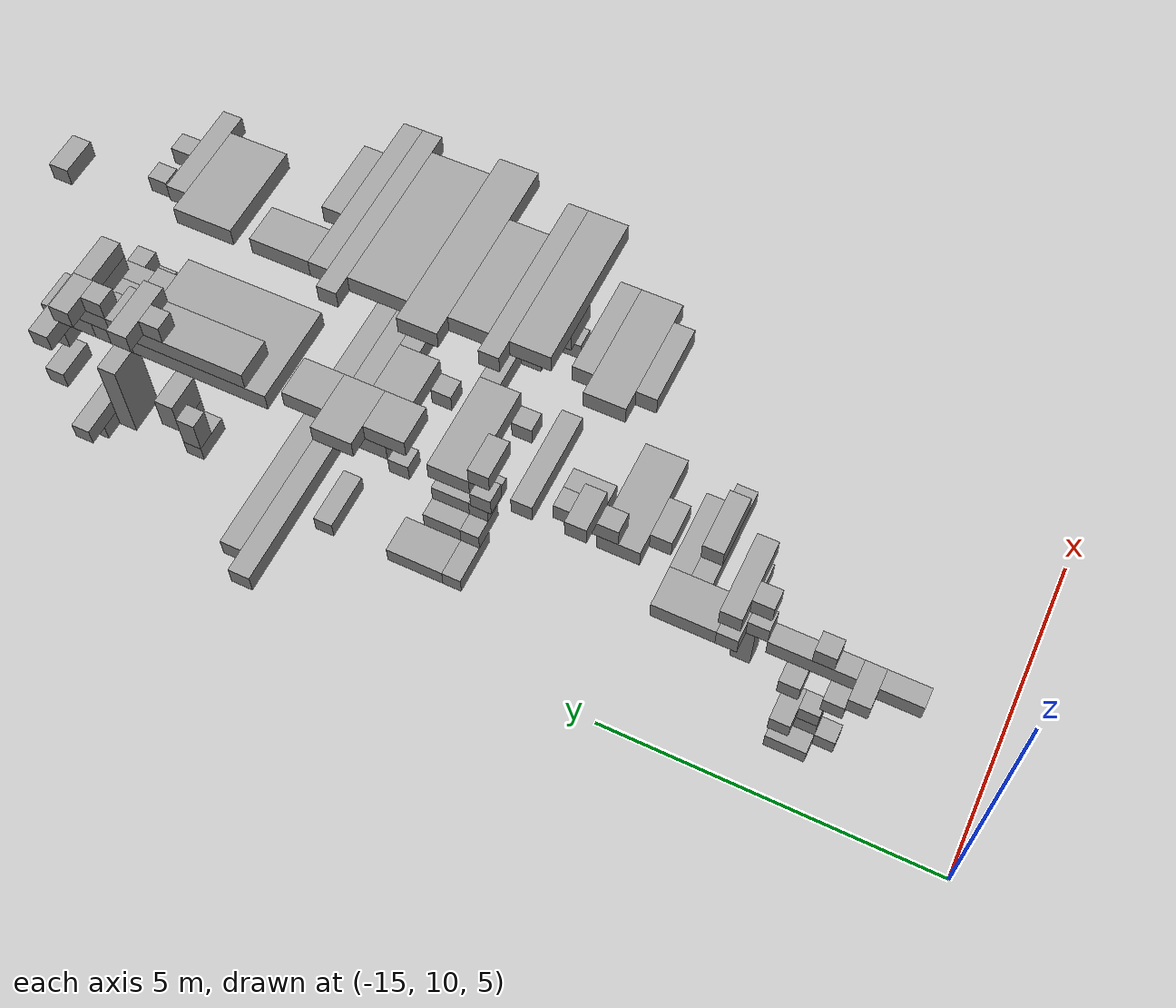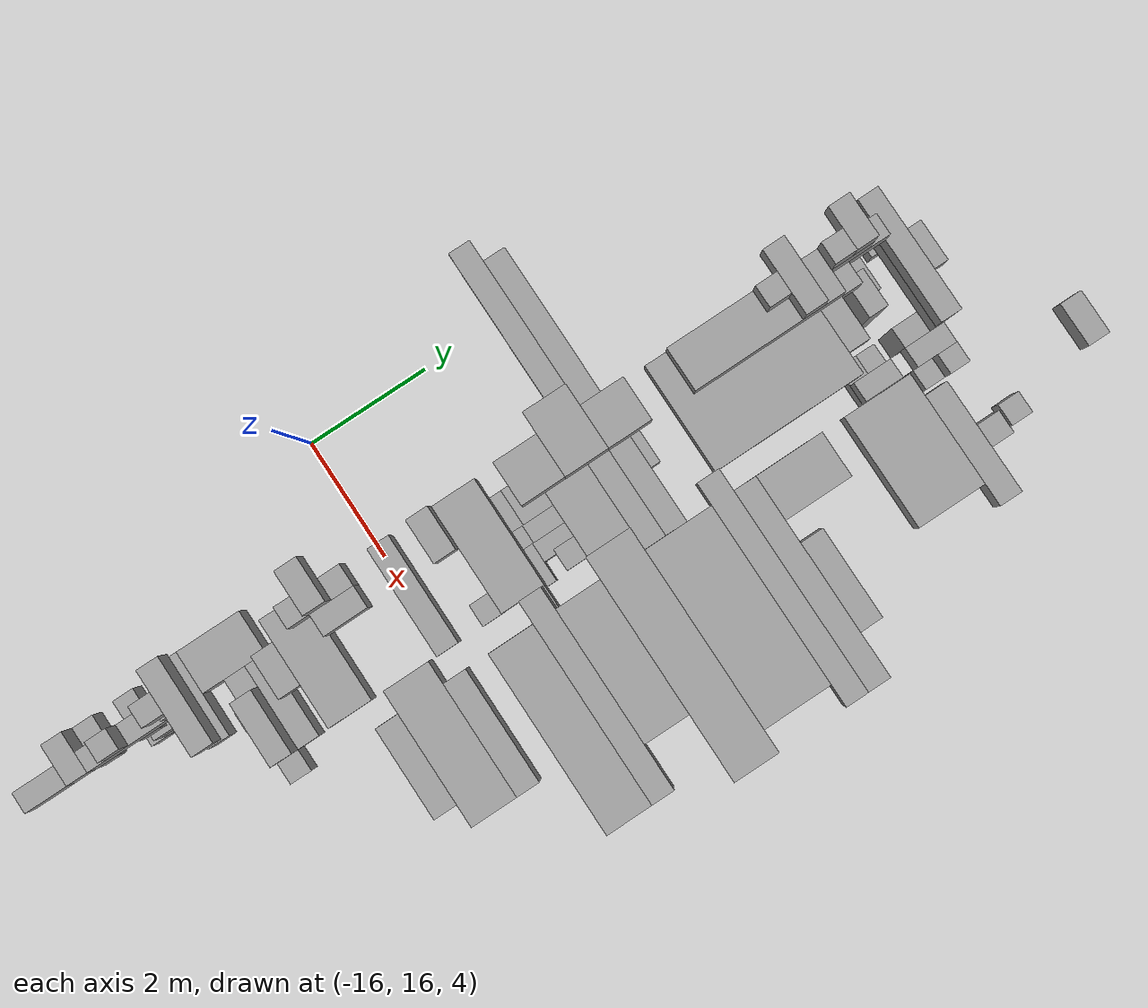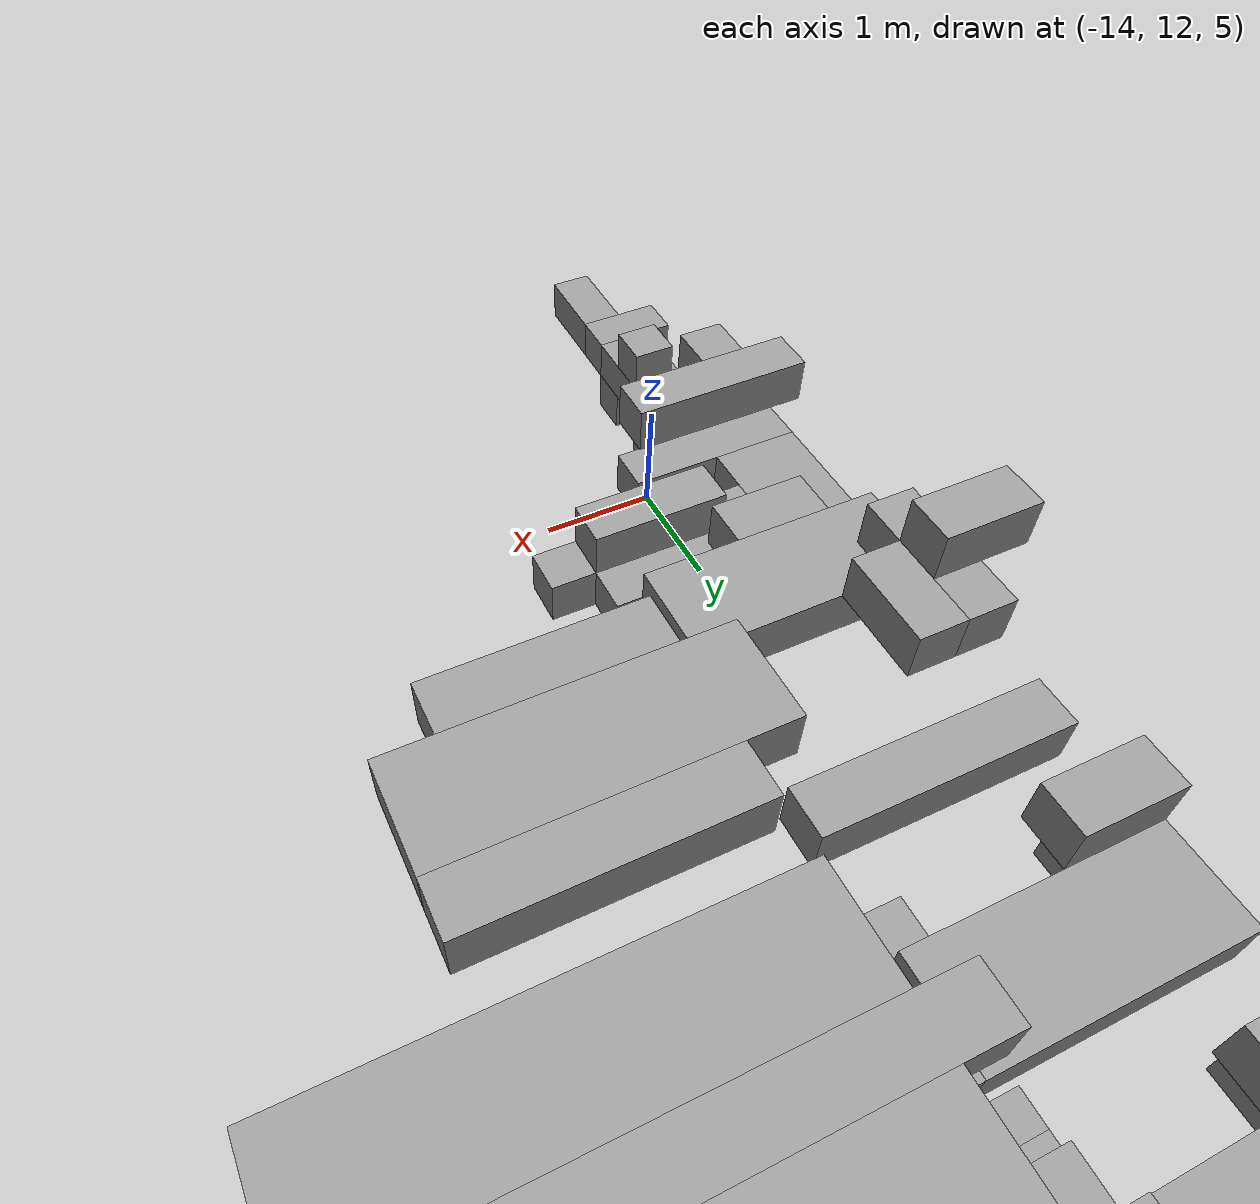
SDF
<sdf version="1.6">
 <world name="bt_world">
  <include><uri>model://sun</uri></include>
  <model name="obstacle_1231">
   <static>true</static>
   <pose>-12.9 19.349999999999998 7.6499999999999995 0 0 0</pose>
   <link name="link">
    <collision name="collision"><geometry><box><size>6.6 0.3 0.3</size></box></geometry></collision>
    <visual name="visual">
     <geometry><box><size>6.6 0.3 0.3</size></box></geometry>
     <material><ambient>0.5 0.5 0.5 1</ambient><diffuse>0.6 0.6 0.6 1</diffuse></material>
    </visual>
   </link>
  </model>
  <model name="obstacle_1248">
   <static>true</static>
   <pose>-12.75 19.65 7.6499999999999995 0 0 0</pose>
   <link name="link">
    <collision name="collision"><geometry><box><size>6.3 0.3 0.3</size></box></geometry></collision>
    <visual name="visual">
     <geometry><box><size>6.3 0.3 0.3</size></box></geometry>
     <material><ambient>0.5 0.5 0.5 1</ambient><diffuse>0.6 0.6 0.6 1</diffuse></material>
    </visual>
   </link>
  </model>
  <model name="obstacle_1386">
   <static>true</static>
   <pose>-13.799999999999999 11.85 6.75 0 0 0</pose>
   <link name="link">
    <collision name="collision"><geometry><box><size>0.6 0.3 0.3</size></box></geometry></collision>
    <visual name="visual">
     <geometry><box><size>0.6 0.3 0.3</size></box></geometry>
     <material><ambient>0.5 0.5 0.5 1</ambient><diffuse>0.6 0.6 0.6 1</diffuse></material>
    </visual>
   </link>
  </model>
  <model name="obstacle_1387">
   <static>true</static>
   <pose>-13.799999999999999 12.15 6.45 0 0 0</pose>
   <link name="link">
    <collision name="collision"><geometry><box><size>0.6 0.3 0.3</size></box></geometry></collision>
    <visual name="visual">
     <geometry><box><size>0.6 0.3 0.3</size></box></geometry>
     <material><ambient>0.5 0.5 0.5 1</ambient><diffuse>0.6 0.6 0.6 1</diffuse></material>
    </visual>
   </link>
  </model>
  <model name="obstacle_1388">
   <static>true</static>
   <pose>-13.799999999999999 12.6 4.6499999999999995 0 0 0</pose>
   <link name="link">
    <collision name="collision"><geometry><box><size>0.6 0.6 0.3</size></box></geometry></collision>
    <visual name="visual">
     <geometry><box><size>0.6 0.6 0.3</size></box></geometry>
     <material><ambient>0.5 0.5 0.5 1</ambient><diffuse>0.6 0.6 0.6 1</diffuse></material>
    </visual>
   </link>
  </model>
  <model name="obstacle_1389">
   <static>true</static>
   <pose>-13.799999999999999 12.75 5.25 0 0 0</pose>
   <link name="link">
    <collision name="collision"><geometry><box><size>0.6 0.3 0.3</size></box></geometry></collision>
    <visual name="visual">
     <geometry><box><size>0.6 0.3 0.3</size></box></geometry>
     <material><ambient>0.5 0.5 0.5 1</ambient><diffuse>0.6 0.6 0.6 1</diffuse></material>
    </visual>
   </link>
  </model>
  <model name="obstacle_1391">
   <static>true</static>
   <pose>-13.799999999999999 12.75 6.45 0 0 0</pose>
   <link name="link">
    <collision name="collision"><geometry><box><size>0.6 0.3 0.3</size></box></geometry></collision>
    <visual name="visual">
     <geometry><box><size>0.6 0.3 0.3</size></box></geometry>
     <material><ambient>0.5 0.5 0.5 1</ambient><diffuse>0.6 0.6 0.6 1</diffuse></material>
    </visual>
   </link>
  </model>
  <model name="obstacle_1392">
   <static>true</static>
   <pose>-13.5 13.65 7.05 0 0 0</pose>
   <link name="link">
    <collision name="collision"><geometry><box><size>1.2 0.3 0.3</size></box></geometry></collision>
    <visual name="visual">
     <geometry><box><size>1.2 0.3 0.3</size></box></geometry>
     <material><ambient>0.5 0.5 0.5 1</ambient><diffuse>0.6 0.6 0.6 1</diffuse></material>
    </visual>
   </link>
  </model>
  <model name="obstacle_1393">
   <static>true</static>
   <pose>-13.5 13.65 7.6499999999999995 0 0 0</pose>
   <link name="link">
    <collision name="collision"><geometry><box><size>1.2 0.3 0.3</size></box></geometry></collision>
    <visual name="visual">
     <geometry><box><size>1.2 0.3 0.3</size></box></geometry>
     <material><ambient>0.5 0.5 0.5 1</ambient><diffuse>0.6 0.6 0.6 1</diffuse></material>
    </visual>
   </link>
  </model>
  <model name="obstacle_1394">
   <static>true</static>
   <pose>-13.799999999999999 14.25 7.05 0 0 0</pose>
   <link name="link">
    <collision name="collision">
     <geometry><box><size>0.6 0.8999999999999999 0.3</size></box></geometry>
    </collision>
    <visual name="visual">
     <geometry><box><size>0.6 0.8999999999999999 0.3</size></box></geometry>
     <material><ambient>0.5 0.5 0.5 1</ambient><diffuse>0.6 0.6 0.6 1</diffuse></material>
    </visual>
   </link>
  </model>
  <model name="obstacle_1395">
   <static>true</static>
   <pose>-13.799999999999999 15.75 8.25 0 0 0</pose>
   <link name="link">
    <collision name="collision"><geometry><box><size>0.6 0.3 0.3</size></box></geometry></collision>
    <visual name="visual">
     <geometry><box><size>0.6 0.3 0.3</size></box></geometry>
     <material><ambient>0.5 0.5 0.5 1</ambient><diffuse>0.6 0.6 0.6 1</diffuse></material>
    </visual>
   </link>
  </model>
  <model name="obstacle_1396">
   <static>true</static>
   <pose>-13.65 19.2 7.949999999999999 0 0 0</pose>
   <link name="link">
    <collision name="collision">
     <geometry><box><size>0.8999999999999999 0.6 0.3</size></box></geometry>
    </collision>
    <visual name="visual">
     <geometry><box><size>0.8999999999999999 0.6 0.3</size></box></geometry>
     <material><ambient>0.5 0.5 0.5 1</ambient><diffuse>0.6 0.6 0.6 1</diffuse></material>
    </visual>
   </link>
  </model>
  <model name="obstacle_1397">
   <static>true</static>
   <pose>-13.65 22.349999999999998 8.25 0 0 0</pose>
   <link name="link">
    <collision name="collision">
     <geometry><box><size>0.8999999999999999 0.3 0.3</size></box></geometry>
    </collision>
    <visual name="visual">
     <geometry><box><size>0.8999999999999999 0.3 0.3</size></box></geometry>
     <material><ambient>0.5 0.5 0.5 1</ambient><diffuse>0.6 0.6 0.6 1</diffuse></material>
    </visual>
   </link>
  </model>
  <model name="obstacle_1398">
   <static>true</static>
   <pose>-13.799999999999999 23.25 8.25 0 0 0</pose>
   <link name="link">
    <collision name="collision"><geometry><box><size>0.6 0.3 0.3</size></box></geometry></collision>
    <visual name="visual">
     <geometry><box><size>0.6 0.3 0.3</size></box></geometry>
     <material><ambient>0.5 0.5 0.5 1</ambient><diffuse>0.6 0.6 0.6 1</diffuse></material>
    </visual>
   </link>
  </model>
  <model name="obstacle_1399">
   <static>true</static>
   <pose>-13.65 23.849999999999998 4.95 0 0 0</pose>
   <link name="link">
    <collision name="collision">
     <geometry><box><size>0.8999999999999999 0.3 0.3</size></box></geometry>
    </collision>
    <visual name="visual">
     <geometry><box><size>0.8999999999999999 0.3 0.3</size></box></geometry>
     <material><ambient>0.5 0.5 0.5 1</ambient><diffuse>0.6 0.6 0.6 1</diffuse></material>
    </visual>
   </link>
  </model>
  <model name="obstacle_1400">
   <static>true</static>
   <pose>-13.799999999999999 23.849999999999998 6.45 0 0 0</pose>
   <link name="link">
    <collision name="collision"><geometry><box><size>0.6 0.3 0.3</size></box></geometry></collision>
    <visual name="visual">
     <geometry><box><size>0.6 0.3 0.3</size></box></geometry>
     <material><ambient>0.5 0.5 0.5 1</ambient><diffuse>0.6 0.6 0.6 1</diffuse></material>
    </visual>
   </link>
  </model>
  <model name="obstacle_1401">
   <static>true</static>
   <pose>-13.2 23.849999999999998 7.35 0 0 0</pose>
   <link name="link">
    <collision name="collision">
     <geometry><box><size>1.7999999999999998 0.3 0.3</size></box></geometry>
    </collision>
    <visual name="visual">
     <geometry><box><size>1.7999999999999998 0.3 0.3</size></box></geometry>
     <material><ambient>0.5 0.5 0.5 1</ambient><diffuse>0.6 0.6 0.6 1</diffuse></material>
    </visual>
   </link>
  </model>
  <model name="obstacle_1473">
   <static>true</static>
   <pose>-13.65 11.4 6.75 0 0 0</pose>
   <link name="link">
    <collision name="collision"><geometry><box><size>0.3 0.6 0.3</size></box></geometry></collision>
    <visual name="visual">
     <geometry><box><size>0.3 0.6 0.3</size></box></geometry>
     <material><ambient>0.5 0.5 0.5 1</ambient><diffuse>0.6 0.6 0.6 1</diffuse></material>
    </visual>
   </link>
  </model>
  <model name="obstacle_1474">
   <static>true</static>
   <pose>-13.65 12.15 4.6499999999999995 0 0 0</pose>
   <link name="link">
    <collision name="collision"><geometry><box><size>0.3 0.3 0.3</size></box></geometry></collision>
    <visual name="visual">
     <geometry><box><size>0.3 0.3 0.3</size></box></geometry>
     <material><ambient>0.5 0.5 0.5 1</ambient><diffuse>0.6 0.6 0.6 1</diffuse></material>
    </visual>
   </link>
  </model>
  <model name="obstacle_1475">
   <static>true</static>
   <pose>-13.65 12.6 6.75 0 0 0</pose>
   <link name="link">
    <collision name="collision"><geometry><box><size>0.3 1.2 0.3</size></box></geometry></collision>
    <visual name="visual">
     <geometry><box><size>0.3 1.2 0.3</size></box></geometry>
     <material><ambient>0.5 0.5 0.5 1</ambient><diffuse>0.6 0.6 0.6 1</diffuse></material>
    </visual>
   </link>
  </model>
  <model name="obstacle_1476">
   <static>true</static>
   <pose>-13.65 12.6 4.95 0 0 0</pose>
   <link name="link">
    <collision name="collision"><geometry><box><size>0.3 0.6 0.3</size></box></geometry></collision>
    <visual name="visual">
     <geometry><box><size>0.3 0.6 0.3</size></box></geometry>
     <material><ambient>0.5 0.5 0.5 1</ambient><diffuse>0.6 0.6 0.6 1</diffuse></material>
    </visual>
   </link>
  </model>
  <model name="obstacle_1477">
   <static>true</static>
   <pose>-13.65 12.45 5.25 0 0 0</pose>
   <link name="link">
    <collision name="collision"><geometry><box><size>0.3 0.3 0.3</size></box></geometry></collision>
    <visual name="visual">
     <geometry><box><size>0.3 0.3 0.3</size></box></geometry>
     <material><ambient>0.5 0.5 0.5 1</ambient><diffuse>0.6 0.6 0.6 1</diffuse></material>
    </visual>
   </link>
  </model>
  <model name="obstacle_1478">
   <static>true</static>
   <pose>-13.65 12.45 7.05 0 0 0</pose>
   <link name="link">
    <collision name="collision"><geometry><box><size>0.3 0.3 0.3</size></box></geometry></collision>
    <visual name="visual">
     <geometry><box><size>0.3 0.3 0.3</size></box></geometry>
     <material><ambient>0.5 0.5 0.5 1</ambient><diffuse>0.6 0.6 0.6 1</diffuse></material>
    </visual>
   </link>
  </model>
  <model name="obstacle_1479">
   <static>true</static>
   <pose>-13.65 13.35 7.05 0 0 0</pose>
   <link name="link">
    <collision name="collision"><geometry><box><size>0.3 0.3 0.3</size></box></geometry></collision>
    <visual name="visual">
     <geometry><box><size>0.3 0.3 0.3</size></box></geometry>
     <material><ambient>0.5 0.5 0.5 1</ambient><diffuse>0.6 0.6 0.6 1</diffuse></material>
    </visual>
   </link>
  </model>
  <model name="obstacle_1480">
   <static>true</static>
   <pose>-13.65 13.35 7.6499999999999995 0 0 0</pose>
   <link name="link">
    <collision name="collision"><geometry><box><size>0.3 0.3 0.3</size></box></geometry></collision>
    <visual name="visual">
     <geometry><box><size>0.3 0.3 0.3</size></box></geometry>
     <material><ambient>0.5 0.5 0.5 1</ambient><diffuse>0.6 0.6 0.6 1</diffuse></material>
    </visual>
   </link>
  </model>
  <model name="obstacle_1481">
   <static>true</static>
   <pose>-13.049999999999999 15.299999999999999 7.6499999999999995 0 0 0</pose>
   <link name="link">
    <collision name="collision"><geometry><box><size>1.5 0.6 0.3</size></box></geometry></collision>
    <visual name="visual">
     <geometry><box><size>1.5 0.6 0.3</size></box></geometry>
     <material><ambient>0.5 0.5 0.5 1</ambient><diffuse>0.6 0.6 0.6 1</diffuse></material>
    </visual>
   </link>
  </model>
  <model name="obstacle_1482">
   <static>true</static>
   <pose>-13.65 15.75 7.949999999999999 0 0 0</pose>
   <link name="link">
    <collision name="collision">
     <geometry><box><size>0.3 0.8999999999999999 0.3</size></box></geometry>
    </collision>
    <visual name="visual">
     <geometry><box><size>0.3 0.8999999999999999 0.3</size></box></geometry>
     <material><ambient>0.5 0.5 0.5 1</ambient><diffuse>0.6 0.6 0.6 1</diffuse></material>
    </visual>
   </link>
  </model>
  <model name="obstacle_1483">
   <static>true</static>
   <pose>-13.049999999999999 16.65 7.6499999999999995 0 0 0</pose>
   <link name="link">
    <collision name="collision"><geometry><box><size>1.5 0.3 0.3</size></box></geometry></collision>
    <visual name="visual">
     <geometry><box><size>1.5 0.3 0.3</size></box></geometry>
     <material><ambient>0.5 0.5 0.5 1</ambient><diffuse>0.6 0.6 0.6 1</diffuse></material>
    </visual>
   </link>
  </model>
  <model name="obstacle_1484">
   <static>true</static>
   <pose>-13.65 17.25 7.35 0 0 0</pose>
   <link name="link">
    <collision name="collision"><geometry><box><size>0.3 0.3 0.3</size></box></geometry></collision>
    <visual name="visual">
     <geometry><box><size>0.3 0.3 0.3</size></box></geometry>
     <material><ambient>0.5 0.5 0.5 1</ambient><diffuse>0.6 0.6 0.6 1</diffuse></material>
    </visual>
   </link>
  </model>
  <model name="obstacle_1485">
   <static>true</static>
   <pose>-13.5 17.25 7.949999999999999 0 0 0</pose>
   <link name="link">
    <collision name="collision"><geometry><box><size>0.6 0.3 0.3</size></box></geometry></collision>
    <visual name="visual">
     <geometry><box><size>0.6 0.3 0.3</size></box></geometry>
     <material><ambient>0.5 0.5 0.5 1</ambient><diffuse>0.6 0.6 0.6 1</diffuse></material>
    </visual>
   </link>
  </model>
  <model name="obstacle_1486">
   <static>true</static>
   <pose>-13.049999999999999 17.7 7.6499999999999995 0 0 0</pose>
   <link name="link">
    <collision name="collision"><geometry><box><size>1.5 0.6 0.3</size></box></geometry></collision>
    <visual name="visual">
     <geometry><box><size>1.5 0.6 0.3</size></box></geometry>
     <material><ambient>0.5 0.5 0.5 1</ambient><diffuse>0.6 0.6 0.6 1</diffuse></material>
    </visual>
   </link>
  </model>
  <model name="obstacle_1487">
   <static>true</static>
   <pose>-13.35 17.849999999999998 4.6499999999999995 0 0 0</pose>
   <link name="link">
    <collision name="collision">
     <geometry><box><size>0.8999999999999999 0.3 0.3</size></box></geometry>
    </collision>
    <visual name="visual">
     <geometry><box><size>0.8999999999999999 0.3 0.3</size></box></geometry>
     <material><ambient>0.5 0.5 0.5 1</ambient><diffuse>0.6 0.6 0.6 1</diffuse></material>
    </visual>
   </link>
  </model>
  <model name="obstacle_1488">
   <static>true</static>
   <pose>-13.5 18.45 4.6499999999999995 0 0 0</pose>
   <link name="link">
    <collision name="collision">
     <geometry><box><size>0.6 0.8999999999999999 0.3</size></box></geometry>
    </collision>
    <visual name="visual">
     <geometry><box><size>0.6 0.8999999999999999 0.3</size></box></geometry>
     <material><ambient>0.5 0.5 0.5 1</ambient><diffuse>0.6 0.6 0.6 1</diffuse></material>
    </visual>
   </link>
  </model>
  <model name="obstacle_1489">
   <static>true</static>
   <pose>-13.65 18.45 7.35 0 0 0</pose>
   <link name="link">
    <collision name="collision"><geometry><box><size>0.3 0.3 0.3</size></box></geometry></collision>
    <visual name="visual">
     <geometry><box><size>0.3 0.3 0.3</size></box></geometry>
     <material><ambient>0.5 0.5 0.5 1</ambient><diffuse>0.6 0.6 0.6 1</diffuse></material>
    </visual>
   </link>
  </model>
  <model name="obstacle_1490">
   <static>true</static>
   <pose>-13.5 18.599999999999998 7.949999999999999 0 0 0</pose>
   <link name="link">
    <collision name="collision"><geometry><box><size>0.6 0.6 0.3</size></box></geometry></collision>
    <visual name="visual">
     <geometry><box><size>0.6 0.6 0.3</size></box></geometry>
     <material><ambient>0.5 0.5 0.5 1</ambient><diffuse>0.6 0.6 0.6 1</diffuse></material>
    </visual>
   </link>
  </model>
  <model name="obstacle_1491">
   <static>true</static>
   <pose>-13.049999999999999 18.9 7.6499999999999995 0 0 0</pose>
   <link name="link">
    <collision name="collision"><geometry><box><size>1.5 0.6 0.3</size></box></geometry></collision>
    <visual name="visual">
     <geometry><box><size>1.5 0.6 0.3</size></box></geometry>
     <material><ambient>0.5 0.5 0.5 1</ambient><diffuse>0.6 0.6 0.6 1</diffuse></material>
    </visual>
   </link>
  </model>
  <model name="obstacle_1492">
   <static>true</static>
   <pose>-13.65 19.65 7.35 0 0 0</pose>
   <link name="link">
    <collision name="collision"><geometry><box><size>0.3 0.3 0.3</size></box></geometry></collision>
    <visual name="visual">
     <geometry><box><size>0.3 0.3 0.3</size></box></geometry>
     <material><ambient>0.5 0.5 0.5 1</ambient><diffuse>0.6 0.6 0.6 1</diffuse></material>
    </visual>
   </link>
  </model>
  <model name="obstacle_1493">
   <static>true</static>
   <pose>-13.5 19.8 7.949999999999999 0 0 0</pose>
   <link name="link">
    <collision name="collision"><geometry><box><size>0.6 0.6 0.3</size></box></geometry></collision>
    <visual name="visual">
     <geometry><box><size>0.6 0.6 0.3</size></box></geometry>
     <material><ambient>0.5 0.5 0.5 1</ambient><diffuse>0.6 0.6 0.6 1</diffuse></material>
    </visual>
   </link>
  </model>
  <model name="obstacle_1494">
   <static>true</static>
   <pose>-13.35 19.95 4.6499999999999995 0 0 0</pose>
   <link name="link">
    <collision name="collision">
     <geometry><box><size>0.8999999999999999 0.3 0.3</size></box></geometry>
    </collision>
    <visual name="visual">
     <geometry><box><size>0.8999999999999999 0.3 0.3</size></box></geometry>
     <material><ambient>0.5 0.5 0.5 1</ambient><diffuse>0.6 0.6 0.6 1</diffuse></material>
    </visual>
   </link>
  </model>
  <model name="obstacle_1495">
   <static>true</static>
   <pose>-13.049999999999999 21.45 7.6499999999999995 0 0 0</pose>
   <link name="link">
    <collision name="collision"><geometry><box><size>1.5 2.1 0.3</size></box></geometry></collision>
    <visual name="visual">
     <geometry><box><size>1.5 2.1 0.3</size></box></geometry>
     <material><ambient>0.5 0.5 0.5 1</ambient><diffuse>0.6 0.6 0.6 1</diffuse></material>
    </visual>
   </link>
  </model>
  <model name="obstacle_1496">
   <static>true</static>
   <pose>-13.5 21.75 7.949999999999999 0 0 0</pose>
   <link name="link">
    <collision name="collision"><geometry><box><size>0.6 2.1 0.3</size></box></geometry></collision>
    <visual name="visual">
     <geometry><box><size>0.6 2.1 0.3</size></box></geometry>
     <material><ambient>0.5 0.5 0.5 1</ambient><diffuse>0.6 0.6 0.6 1</diffuse></material>
    </visual>
   </link>
  </model>
  <model name="obstacle_1497">
   <static>true</static>
   <pose>-13.65 22.05 8.25 0 0 0</pose>
   <link name="link">
    <collision name="collision"><geometry><box><size>0.3 0.3 0.3</size></box></geometry></collision>
    <visual name="visual">
     <geometry><box><size>0.3 0.3 0.3</size></box></geometry>
     <material><ambient>0.5 0.5 0.5 1</ambient><diffuse>0.6 0.6 0.6 1</diffuse></material>
    </visual>
   </link>
  </model>
  <model name="obstacle_1498">
   <static>true</static>
   <pose>-13.2 22.65 7.6499999999999995 0 0 0</pose>
   <link name="link">
    <collision name="collision"><geometry><box><size>1.2 0.3 0.3</size></box></geometry></collision>
    <visual name="visual">
     <geometry><box><size>1.2 0.3 0.3</size></box></geometry>
     <material><ambient>0.5 0.5 0.5 1</ambient><diffuse>0.6 0.6 0.6 1</diffuse></material>
    </visual>
   </link>
  </model>
  <model name="obstacle_1499">
   <static>true</static>
   <pose>-13.5 22.95 7.6499999999999995 0 0 0</pose>
   <link name="link">
    <collision name="collision"><geometry><box><size>0.6 0.3 0.3</size></box></geometry></collision>
    <visual name="visual">
     <geometry><box><size>0.6 0.3 0.3</size></box></geometry>
     <material><ambient>0.5 0.5 0.5 1</ambient><diffuse>0.6 0.6 0.6 1</diffuse></material>
    </visual>
   </link>
  </model>
  <model name="obstacle_1500">
   <static>true</static>
   <pose>-13.65 23.099999999999998 7.949999999999999 0 0 0</pose>
   <link name="link">
    <collision name="collision"><geometry><box><size>0.3 0.6 0.3</size></box></geometry></collision>
    <visual name="visual">
     <geometry><box><size>0.3 0.6 0.3</size></box></geometry>
     <material><ambient>0.5 0.5 0.5 1</ambient><diffuse>0.6 0.6 0.6 1</diffuse></material>
    </visual>
   </link>
  </model>
  <model name="obstacle_1501">
   <static>true</static>
   <pose>-13.65 22.95 8.25 0 0 0</pose>
   <link name="link">
    <collision name="collision"><geometry><box><size>0.3 0.3 0.3</size></box></geometry></collision>
    <visual name="visual">
     <geometry><box><size>0.3 0.3 0.3</size></box></geometry>
     <material><ambient>0.5 0.5 0.5 1</ambient><diffuse>0.6 0.6 0.6 1</diffuse></material>
    </visual>
   </link>
  </model>
  <model name="obstacle_1502">
   <static>true</static>
   <pose>-13.65 23.4 7.6499999999999995 0 0 0</pose>
   <link name="link">
    <collision name="collision"><geometry><box><size>0.3 0.6 0.3</size></box></geometry></collision>
    <visual name="visual">
     <geometry><box><size>0.3 0.6 0.3</size></box></geometry>
     <material><ambient>0.5 0.5 0.5 1</ambient><diffuse>0.6 0.6 0.6 1</diffuse></material>
    </visual>
   </link>
  </model>
  <model name="obstacle_1503">
   <static>true</static>
   <pose>-13.5 23.849999999999998 4.6499999999999995 0 0 0</pose>
   <link name="link">
    <collision name="collision"><geometry><box><size>0.6 0.3 0.3</size></box></geometry></collision>
    <visual name="visual">
     <geometry><box><size>0.6 0.3 0.3</size></box></geometry>
     <material><ambient>0.5 0.5 0.5 1</ambient><diffuse>0.6 0.6 0.6 1</diffuse></material>
    </visual>
   </link>
  </model>
  <model name="obstacle_1504">
   <static>true</static>
   <pose>-13.049999999999999 23.849999999999998 7.05 0 0 0</pose>
   <link name="link">
    <collision name="collision"><geometry><box><size>1.5 0.3 0.3</size></box></geometry></collision>
    <visual name="visual">
     <geometry><box><size>1.5 0.3 0.3</size></box></geometry>
     <material><ambient>0.5 0.5 0.5 1</ambient><diffuse>0.6 0.6 0.6 1</diffuse></material>
    </visual>
   </link>
  </model>
  <model name="obstacle_1515">
   <static>true</static>
   <pose>-12.75 14.25 7.05 0 0 0</pose>
   <link name="link">
    <collision name="collision"><geometry><box><size>1.5 0.3 0.3</size></box></geometry></collision>
    <visual name="visual">
     <geometry><box><size>1.5 0.3 0.3</size></box></geometry>
     <material><ambient>0.5 0.5 0.5 1</ambient><diffuse>0.6 0.6 0.6 1</diffuse></material>
    </visual>
   </link>
  </model>
  <model name="obstacle_1516">
   <static>true</static>
   <pose>-12.9 14.549999999999999 7.05 0 0 0</pose>
   <link name="link">
    <collision name="collision"><geometry><box><size>1.2 0.3 0.3</size></box></geometry></collision>
    <visual name="visual">
     <geometry><box><size>1.2 0.3 0.3</size></box></geometry>
     <material><ambient>0.5 0.5 0.5 1</ambient><diffuse>0.6 0.6 0.6 1</diffuse></material>
    </visual>
   </link>
  </model>
  <model name="obstacle_1517">
   <static>true</static>
   <pose>-13.2 14.85 7.6499999999999995 0 0 0</pose>
   <link name="link">
    <collision name="collision"><geometry><box><size>0.6 0.3 0.3</size></box></geometry></collision>
    <visual name="visual">
     <geometry><box><size>0.6 0.3 0.3</size></box></geometry>
     <material><ambient>0.5 0.5 0.5 1</ambient><diffuse>0.6 0.6 0.6 1</diffuse></material>
    </visual>
   </link>
  </model>
  <model name="obstacle_1518">
   <static>true</static>
   <pose>-13.35 15.899999999999999 7.949999999999999 0 0 0</pose>
   <link name="link">
    <collision name="collision"><geometry><box><size>0.3 0.6 0.3</size></box></geometry></collision>
    <visual name="visual">
     <geometry><box><size>0.3 0.6 0.3</size></box></geometry>
     <material><ambient>0.5 0.5 0.5 1</ambient><diffuse>0.6 0.6 0.6 1</diffuse></material>
    </visual>
   </link>
  </model>
  <model name="obstacle_1519">
   <static>true</static>
   <pose>-13.2 22.349999999999998 4.6499999999999995 0 0 0</pose>
   <link name="link">
    <collision name="collision"><geometry><box><size>0.6 0.3 0.3</size></box></geometry></collision>
    <visual name="visual">
     <geometry><box><size>0.6 0.3 0.3</size></box></geometry>
     <material><ambient>0.5 0.5 0.5 1</ambient><diffuse>0.6 0.6 0.6 1</diffuse></material>
    </visual>
   </link>
  </model>
  <model name="obstacle_1520">
   <static>true</static>
   <pose>-13.35 22.349999999999998 5.1 0 0 0</pose>
   <link name="link">
    <collision name="collision"><geometry><box><size>0.3 0.3 0.6</size></box></geometry></collision>
    <visual name="visual">
     <geometry><box><size>0.3 0.3 0.6</size></box></geometry>
     <material><ambient>0.5 0.5 0.5 1</ambient><diffuse>0.6 0.6 0.6 1</diffuse></material>
    </visual>
   </link>
  </model>
  <model name="obstacle_1521">
   <static>true</static>
   <pose>-13.2 22.65 5.3999999999999995 0 0 0</pose>
   <link name="link">
    <collision name="collision"><geometry><box><size>0.6 0.3 0.6</size></box></geometry></collision>
    <visual name="visual">
     <geometry><box><size>0.6 0.3 0.6</size></box></geometry>
     <material><ambient>0.5 0.5 0.5 1</ambient><diffuse>0.6 0.6 0.6 1</diffuse></material>
    </visual>
   </link>
  </model>
  <model name="obstacle_1522">
   <static>true</static>
   <pose>-13.2 23.55 5.25 0 0 0</pose>
   <link name="link">
    <collision name="collision"><geometry><box><size>0.6 0.3 1.5</size></box></geometry></collision>
    <visual name="visual">
     <geometry><box><size>0.6 0.3 1.5</size></box></geometry>
     <material><ambient>0.5 0.5 0.5 1</ambient><diffuse>0.6 0.6 0.6 1</diffuse></material>
    </visual>
   </link>
  </model>
  <model name="obstacle_1523">
   <static>true</static>
   <pose>-13.2 24.15 7.05 0 0 0</pose>
   <link name="link">
    <collision name="collision"><geometry><box><size>0.6 0.3 0.3</size></box></geometry></collision>
    <visual name="visual">
     <geometry><box><size>0.6 0.3 0.3</size></box></geometry>
     <material><ambient>0.5 0.5 0.5 1</ambient><diffuse>0.6 0.6 0.6 1</diffuse></material>
    </visual>
   </link>
  </model>
  <model name="obstacle_1547">
   <static>true</static>
   <pose>-13.049999999999999 13.65 5.25 0 0 0</pose>
   <link name="link">
    <collision name="collision">
     <geometry><box><size>0.3 0.3 0.8999999999999999</size></box></geometry>
    </collision>
    <visual name="visual">
     <geometry><box><size>0.3 0.3 0.8999999999999999</size></box></geometry>
     <material><ambient>0.5 0.5 0.5 1</ambient><diffuse>0.6 0.6 0.6 1</diffuse></material>
    </visual>
   </link>
  </model>
  <model name="obstacle_1548">
   <static>true</static>
   <pose>-12.75 14.25 7.35 0 0 0</pose>
   <link name="link">
    <collision name="collision">
     <geometry><box><size>0.8999999999999999 0.3 0.3</size></box></geometry>
    </collision>
    <visual name="visual">
     <geometry><box><size>0.8999999999999999 0.3 0.3</size></box></geometry>
     <material><ambient>0.5 0.5 0.5 1</ambient><diffuse>0.6 0.6 0.6 1</diffuse></material>
    </visual>
   </link>
  </model>
  <model name="obstacle_1549">
   <static>true</static>
   <pose>-12.9 17.849999999999998 4.95 0 0 0</pose>
   <link name="link">
    <collision name="collision"><geometry><box><size>0.6 0.3 0.3</size></box></geometry></collision>
    <visual name="visual">
     <geometry><box><size>0.6 0.3 0.3</size></box></geometry>
     <material><ambient>0.5 0.5 0.5 1</ambient><diffuse>0.6 0.6 0.6 1</diffuse></material>
    </visual>
   </link>
  </model>
  <model name="obstacle_1550">
   <static>true</static>
   <pose>-13.049999999999999 18.3 4.95 0 0 0</pose>
   <link name="link">
    <collision name="collision"><geometry><box><size>0.3 0.6 0.3</size></box></geometry></collision>
    <visual name="visual">
     <geometry><box><size>0.3 0.6 0.3</size></box></geometry>
     <material><ambient>0.5 0.5 0.5 1</ambient><diffuse>0.6 0.6 0.6 1</diffuse></material>
    </visual>
   </link>
  </model>
  <model name="obstacle_1551">
   <static>true</static>
   <pose>-13.049999999999999 22.65 4.8 0 0 0</pose>
   <link name="link">
    <collision name="collision"><geometry><box><size>0.3 0.3 0.6</size></box></geometry></collision>
    <visual name="visual">
     <geometry><box><size>0.3 0.3 0.6</size></box></geometry>
     <material><ambient>0.5 0.5 0.5 1</ambient><diffuse>0.6 0.6 0.6 1</diffuse></material>
    </visual>
   </link>
  </model>
  <model name="obstacle_1561">
   <static>true</static>
   <pose>-12.6 17.849999999999998 5.25 0 0 0</pose>
   <link name="link">
    <collision name="collision"><geometry><box><size>0.6 0.3 0.3</size></box></geometry></collision>
    <visual name="visual">
     <geometry><box><size>0.6 0.3 0.3</size></box></geometry>
     <material><ambient>0.5 0.5 0.5 1</ambient><diffuse>0.6 0.6 0.6 1</diffuse></material>
    </visual>
   </link>
  </model>
  <model name="obstacle_1562">
   <static>true</static>
   <pose>-12.75 18.3 5.25 0 0 0</pose>
   <link name="link">
    <collision name="collision"><geometry><box><size>0.3 0.6 0.3</size></box></geometry></collision>
    <visual name="visual">
     <geometry><box><size>0.3 0.6 0.3</size></box></geometry>
     <material><ambient>0.5 0.5 0.5 1</ambient><diffuse>0.6 0.6 0.6 1</diffuse></material>
    </visual>
   </link>
  </model>
  <model name="obstacle_1563">
   <static>true</static>
   <pose>-12.75 18.45 4.95 0 0 0</pose>
   <link name="link">
    <collision name="collision"><geometry><box><size>0.3 0.3 0.3</size></box></geometry></collision>
    <visual name="visual">
     <geometry><box><size>0.3 0.3 0.3</size></box></geometry>
     <material><ambient>0.5 0.5 0.5 1</ambient><diffuse>0.6 0.6 0.6 1</diffuse></material>
    </visual>
   </link>
  </model>
  <model name="obstacle_1580">
   <static>true</static>
   <pose>-12.45 17.25 7.35 0 0 0</pose>
   <link name="link">
    <collision name="collision"><geometry><box><size>0.3 0.3 0.3</size></box></geometry></collision>
    <visual name="visual">
     <geometry><box><size>0.3 0.3 0.3</size></box></geometry>
     <material><ambient>0.5 0.5 0.5 1</ambient><diffuse>0.6 0.6 0.6 1</diffuse></material>
    </visual>
   </link>
  </model>
  <model name="obstacle_1581">
   <static>true</static>
   <pose>-12.45 18.45 7.35 0 0 0</pose>
   <link name="link">
    <collision name="collision"><geometry><box><size>0.3 0.3 0.3</size></box></geometry></collision>
    <visual name="visual">
     <geometry><box><size>0.3 0.3 0.3</size></box></geometry>
     <material><ambient>0.5 0.5 0.5 1</ambient><diffuse>0.6 0.6 0.6 1</diffuse></material>
    </visual>
   </link>
  </model>
  <model name="obstacle_1582">
   <static>true</static>
   <pose>-12.45 19.65 7.35 0 0 0</pose>
   <link name="link">
    <collision name="collision"><geometry><box><size>0.3 0.3 0.3</size></box></geometry></collision>
    <visual name="visual">
     <geometry><box><size>0.3 0.3 0.3</size></box></geometry>
     <material><ambient>0.5 0.5 0.5 1</ambient><diffuse>0.6 0.6 0.6 1</diffuse></material>
    </visual>
   </link>
  </model>
  <model name="obstacle_1583">
   <static>true</static>
   <pose>-12.15 22.95 5.25 0 0 0</pose>
   <link name="link">
    <collision name="collision">
     <geometry><box><size>0.8999999999999999 0.3 0.3</size></box></geometry>
    </collision>
    <visual name="visual">
     <geometry><box><size>0.8999999999999999 0.3 0.3</size></box></geometry>
     <material><ambient>0.5 0.5 0.5 1</ambient><diffuse>0.6 0.6 0.6 1</diffuse></material>
    </visual>
   </link>
  </model>
  <model name="obstacle_1584">
   <static>true</static>
   <pose>-12.299999999999999 23.25 5.25 0 0 0</pose>
   <link name="link">
    <collision name="collision"><geometry><box><size>0.6 0.3 0.3</size></box></geometry></collision>
    <visual name="visual">
     <geometry><box><size>0.6 0.3 0.3</size></box></geometry>
     <material><ambient>0.5 0.5 0.5 1</ambient><diffuse>0.6 0.6 0.6 1</diffuse></material>
    </visual>
   </link>
  </model>
  <model name="obstacle_1585">
   <static>true</static>
   <pose>-12.45 23.7 6.1499999999999995 0 0 0</pose>
   <link name="link">
    <collision name="collision">
     <geometry><box><size>0.3 0.6 0.8999999999999999</size></box></geometry>
    </collision>
    <visual name="visual">
     <geometry><box><size>0.3 0.6 0.8999999999999999</size></box></geometry>
     <material><ambient>0.5 0.5 0.5 1</ambient><diffuse>0.6 0.6 0.6 1</diffuse></material>
    </visual>
   </link>
  </model>
  <model name="obstacle_1586">
   <static>true</static>
   <pose>-12.45 23.849999999999998 5.55 0 0 0</pose>
   <link name="link">
    <collision name="collision"><geometry><box><size>0.3 0.3 0.3</size></box></geometry></collision>
    <visual name="visual">
     <geometry><box><size>0.3 0.3 0.3</size></box></geometry>
     <material><ambient>0.5 0.5 0.5 1</ambient><diffuse>0.6 0.6 0.6 1</diffuse></material>
    </visual>
   </link>
  </model>
  <model name="obstacle_1596">
   <static>true</static>
   <pose>-11.4 16.2 8.25 0 0 0</pose>
   <link name="link">
    <collision name="collision">
     <geometry><box><size>1.7999999999999998 0.6 0.3</size></box></geometry>
    </collision>
    <visual name="visual">
     <geometry><box><size>1.7999999999999998 0.6 0.3</size></box></geometry>
     <material><ambient>0.5 0.5 0.5 1</ambient><diffuse>0.6 0.6 0.6 1</diffuse></material>
    </visual>
   </link>
  </model>
  <model name="obstacle_1597">
   <static>true</static>
   <pose>-11.4 17.849999999999998 7.6499999999999995 0 0 0</pose>
   <link name="link">
    <collision name="collision">
     <geometry><box><size>1.7999999999999998 0.3 0.3</size></box></geometry>
    </collision>
    <visual name="visual">
     <geometry><box><size>1.7999999999999998 0.3 0.3</size></box></geometry>
     <material><ambient>0.5 0.5 0.5 1</ambient><diffuse>0.6 0.6 0.6 1</diffuse></material>
    </visual>
   </link>
  </model>
  <model name="obstacle_1598">
   <static>true</static>
   <pose>-10.95 17.849999999999998 8.25 0 0 0</pose>
   <link name="link">
    <collision name="collision">
     <geometry><box><size>2.6999999999999997 0.3 0.3</size></box></geometry>
    </collision>
    <visual name="visual">
     <geometry><box><size>2.6999999999999997 0.3 0.3</size></box></geometry>
     <material><ambient>0.5 0.5 0.5 1</ambient><diffuse>0.6 0.6 0.6 1</diffuse></material>
    </visual>
   </link>
  </model>
  <model name="obstacle_1599">
   <static>true</static>
   <pose>-10.799999999999999 18.9 8.25 0 0 0</pose>
   <link name="link">
    <collision name="collision"><geometry><box><size>3.0 0.6 0.3</size></box></geometry></collision>
    <visual name="visual">
     <geometry><box><size>3.0 0.6 0.3</size></box></geometry>
     <material><ambient>0.5 0.5 0.5 1</ambient><diffuse>0.6 0.6 0.6 1</diffuse></material>
    </visual>
   </link>
  </model>
  <model name="obstacle_1600">
   <static>true</static>
   <pose>-11.549999999999999 19.05 7.6499999999999995 0 0 0</pose>
   <link name="link">
    <collision name="collision"><geometry><box><size>1.5 0.3 0.3</size></box></geometry></collision>
    <visual name="visual">
     <geometry><box><size>1.5 0.3 0.3</size></box></geometry>
     <material><ambient>0.5 0.5 0.5 1</ambient><diffuse>0.6 0.6 0.6 1</diffuse></material>
    </visual>
   </link>
  </model>
  <model name="obstacle_1601">
   <static>true</static>
   <pose>-10.799999999999999 20.25 8.25 0 0 0</pose>
   <link name="link">
    <collision name="collision"><geometry><box><size>3.0 0.3 0.3</size></box></geometry></collision>
    <visual name="visual">
     <geometry><box><size>3.0 0.3 0.3</size></box></geometry>
     <material><ambient>0.5 0.5 0.5 1</ambient><diffuse>0.6 0.6 0.6 1</diffuse></material>
    </visual>
   </link>
  </model>
  <model name="obstacle_1602">
   <static>true</static>
   <pose>-12.15 23.099999999999998 5.55 0 0 0</pose>
   <link name="link">
    <collision name="collision"><geometry><box><size>0.3 0.6 0.3</size></box></geometry></collision>
    <visual name="visual">
     <geometry><box><size>0.3 0.6 0.3</size></box></geometry>
     <material><ambient>0.5 0.5 0.5 1</ambient><diffuse>0.6 0.6 0.6 1</diffuse></material>
    </visual>
   </link>
  </model>
  <model name="obstacle_1603">
   <static>true</static>
   <pose>-12.15 23.7 6.45 0 0 0</pose>
   <link name="link">
    <collision name="collision"><geometry><box><size>0.3 0.6 0.3</size></box></geometry></collision>
    <visual name="visual">
     <geometry><box><size>0.3 0.6 0.3</size></box></geometry>
     <material><ambient>0.5 0.5 0.5 1</ambient><diffuse>0.6 0.6 0.6 1</diffuse></material>
    </visual>
   </link>
  </model>
  <model name="obstacle_1604">
   <static>true</static>
   <pose>-12.0 23.849999999999998 6.0 0 0 0</pose>
   <link name="link">
    <collision name="collision"><geometry><box><size>0.6 0.3 0.6</size></box></geometry></collision>
    <visual name="visual">
     <geometry><box><size>0.6 0.3 0.6</size></box></geometry>
     <material><ambient>0.5 0.5 0.5 1</ambient><diffuse>0.6 0.6 0.6 1</diffuse></material>
    </visual>
   </link>
  </model>
  <model name="obstacle_1613">
   <static>true</static>
   <pose>-11.4 15.75 8.25 0 0 0</pose>
   <link name="link">
    <collision name="collision"><geometry><box><size>1.2 0.3 0.3</size></box></geometry></collision>
    <visual name="visual">
     <geometry><box><size>1.2 0.3 0.3</size></box></geometry>
     <material><ambient>0.5 0.5 0.5 1</ambient><diffuse>0.6 0.6 0.6 1</diffuse></material>
    </visual>
   </link>
  </model>
  <model name="obstacle_1614">
   <static>true</static>
   <pose>-11.25 16.65 8.25 0 0 0</pose>
   <link name="link">
    <collision name="collision"><geometry><box><size>1.5 0.3 0.3</size></box></geometry></collision>
    <visual name="visual">
     <geometry><box><size>1.5 0.3 0.3</size></box></geometry>
     <material><ambient>0.5 0.5 0.5 1</ambient><diffuse>0.6 0.6 0.6 1</diffuse></material>
    </visual>
   </link>
  </model>
  <model name="obstacle_1615">
   <static>true</static>
   <pose>-10.799999999999999 17.4 8.25 0 0 0</pose>
   <link name="link">
    <collision name="collision"><geometry><box><size>2.4 0.6 0.3</size></box></geometry></collision>
    <visual name="visual">
     <geometry><box><size>2.4 0.6 0.3</size></box></geometry>
     <material><ambient>0.5 0.5 0.5 1</ambient><diffuse>0.6 0.6 0.6 1</diffuse></material>
    </visual>
   </link>
  </model>
  <model name="obstacle_1616">
   <static>true</static>
   <pose>-11.1 18.3 8.25 0 0 0</pose>
   <link name="link">
    <collision name="collision">
     <geometry><box><size>1.7999999999999998 0.6 0.3</size></box></geometry>
    </collision>
    <visual name="visual">
     <geometry><box><size>1.7999999999999998 0.6 0.3</size></box></geometry>
     <material><ambient>0.5 0.5 0.5 1</ambient><diffuse>0.6 0.6 0.6 1</diffuse></material>
    </visual>
   </link>
  </model>
  <model name="obstacle_1617">
   <static>true</static>
   <pose>-10.799999999999999 19.65 8.25 0 0 0</pose>
   <link name="link">
    <collision name="collision">
     <geometry><box><size>2.4 0.8999999999999999 0.3</size></box></geometry>
    </collision>
    <visual name="visual">
     <geometry><box><size>2.4 0.8999999999999999 0.3</size></box></geometry>
     <material><ambient>0.5 0.5 0.5 1</ambient><diffuse>0.6 0.6 0.6 1</diffuse></material>
    </visual>
   </link>
  </model>
  <model name="obstacle_1618">
   <static>true</static>
   <pose>-10.65 20.55 8.25 0 0 0</pose>
   <link name="link">
    <collision name="collision">
     <geometry><box><size>2.6999999999999997 0.3 0.3</size></box></geometry>
    </collision>
    <visual name="visual">
     <geometry><box><size>2.6999999999999997 0.3 0.3</size></box></geometry>
     <material><ambient>0.5 0.5 0.5 1</ambient><diffuse>0.6 0.6 0.6 1</diffuse></material>
    </visual>
   </link>
  </model>
  <model name="obstacle_1619">
   <static>true</static>
   <pose>-11.7 21.15 8.25 0 0 0</pose>
   <link name="link">
    <collision name="collision">
     <geometry><box><size>0.6 0.8999999999999999 0.3</size></box></geometry>
    </collision>
    <visual name="visual">
     <geometry><box><size>0.6 0.8999999999999999 0.3</size></box></geometry>
     <material><ambient>0.5 0.5 0.5 1</ambient><diffuse>0.6 0.6 0.6 1</diffuse></material>
    </visual>
   </link>
  </model>
  <model name="obstacle_1620">
   <static>true</static>
   <pose>-11.25 22.349999999999998 8.25 0 0 0</pose>
   <link name="link">
    <collision name="collision">
     <geometry><box><size>1.5 0.8999999999999999 0.3</size></box></geometry>
    </collision>
    <visual name="visual">
     <geometry><box><size>1.5 0.8999999999999999 0.3</size></box></geometry>
     <material><ambient>0.5 0.5 0.5 1</ambient><diffuse>0.6 0.6 0.6 1</diffuse></material>
    </visual>
   </link>
  </model>
  <model name="obstacle_1621">
   <static>true</static>
   <pose>-11.85 23.55 6.0 0 0 0</pose>
   <link name="link">
    <collision name="collision"><geometry><box><size>0.3 0.3 0.6</size></box></geometry></collision>
    <visual name="visual">
     <geometry><box><size>0.3 0.3 0.6</size></box></geometry>
     <material><ambient>0.5 0.5 0.5 1</ambient><diffuse>0.6 0.6 0.6 1</diffuse></material>
    </visual>
   </link>
  </model>
  <model name="obstacle_1622">
   <static>true</static>
   <pose>-11.85 23.849999999999998 6.45 0 0 0</pose>
   <link name="link">
    <collision name="collision"><geometry><box><size>0.3 0.3 0.3</size></box></geometry></collision>
    <visual name="visual">
     <geometry><box><size>0.3 0.3 0.3</size></box></geometry>
     <material><ambient>0.5 0.5 0.5 1</ambient><diffuse>0.6 0.6 0.6 1</diffuse></material>
    </visual>
   </link>
  </model>
  <model name="obstacle_1642">
   <static>true</static>
   <pose>-11.25 17.55 7.8 0 0 0</pose>
   <link name="link">
    <collision name="collision">
     <geometry><box><size>0.8999999999999999 0.3 0.6</size></box></geometry>
    </collision>
    <visual name="visual">
     <geometry><box><size>0.8999999999999999 0.3 0.6</size></box></geometry>
     <material><ambient>0.5 0.5 0.5 1</ambient><diffuse>0.6 0.6 0.6 1</diffuse></material>
    </visual>
   </link>
  </model>
  <model name="obstacle_1643">
   <static>true</static>
   <pose>-11.1 20.55 7.6499999999999995 0 0 0</pose>
   <link name="link">
    <collision name="collision"><geometry><box><size>1.2 0.3 0.3</size></box></geometry></collision>
    <visual name="visual">
     <geometry><box><size>1.2 0.3 0.3</size></box></geometry>
     <material><ambient>0.5 0.5 0.5 1</ambient><diffuse>0.6 0.6 0.6 1</diffuse></material>
    </visual>
   </link>
  </model>
  <model name="obstacle_1644">
   <static>true</static>
   <pose>-10.95 22.95 8.25 0 0 0</pose>
   <link name="link">
    <collision name="collision"><geometry><box><size>1.5 0.3 0.3</size></box></geometry></collision>
    <visual name="visual">
     <geometry><box><size>1.5 0.3 0.3</size></box></geometry>
     <material><ambient>0.5 0.5 0.5 1</ambient><diffuse>0.6 0.6 0.6 1</diffuse></material>
    </visual>
   </link>
  </model>
  <model name="obstacle_1645">
   <static>true</static>
   <pose>-11.4 25.05 7.6499999999999995 0 0 0</pose>
   <link name="link">
    <collision name="collision"><geometry><box><size>0.6 0.3 0.3</size></box></geometry></collision>
    <visual name="visual">
     <geometry><box><size>0.6 0.3 0.3</size></box></geometry>
     <material><ambient>0.5 0.5 0.5 1</ambient><diffuse>0.6 0.6 0.6 1</diffuse></material>
    </visual>
   </link>
  </model>
  <model name="obstacle_1654">
   <static>true</static>
   <pose>-11.1 17.25 7.949999999999999 0 0 0</pose>
   <link name="link">
    <collision name="collision"><geometry><box><size>0.6 0.3 0.3</size></box></geometry></collision>
    <visual name="visual">
     <geometry><box><size>0.6 0.3 0.3</size></box></geometry>
     <material><ambient>0.5 0.5 0.5 1</ambient><diffuse>0.6 0.6 0.6 1</diffuse></material>
    </visual>
   </link>
  </model>
  <model name="obstacle_1661">
   <static>true</static>
   <pose>-10.95 17.25 7.35 0 0 0</pose>
   <link name="link">
    <collision name="collision"><geometry><box><size>0.3 0.3 0.3</size></box></geometry></collision>
    <visual name="visual">
     <geometry><box><size>0.3 0.3 0.3</size></box></geometry>
     <material><ambient>0.5 0.5 0.5 1</ambient><diffuse>0.6 0.6 0.6 1</diffuse></material>
    </visual>
   </link>
  </model>
  <model name="obstacle_1662">
   <static>true</static>
   <pose>-10.95 18.45 7.35 0 0 0</pose>
   <link name="link">
    <collision name="collision"><geometry><box><size>0.3 0.3 0.3</size></box></geometry></collision>
    <visual name="visual">
     <geometry><box><size>0.3 0.3 0.3</size></box></geometry>
     <material><ambient>0.5 0.5 0.5 1</ambient><diffuse>0.6 0.6 0.6 1</diffuse></material>
    </visual>
   </link>
  </model>
  <model name="obstacle_1663">
   <static>true</static>
   <pose>-10.95 19.65 7.35 0 0 0</pose>
   <link name="link">
    <collision name="collision"><geometry><box><size>0.3 0.3 0.3</size></box></geometry></collision>
    <visual name="visual">
     <geometry><box><size>0.3 0.3 0.3</size></box></geometry>
     <material><ambient>0.5 0.5 0.5 1</ambient><diffuse>0.6 0.6 0.6 1</diffuse></material>
    </visual>
   </link>
  </model>
  <model name="obstacle_1664">
   <static>true</static>
   <pose>-10.95 20.25 7.949999999999999 0 0 0</pose>
   <link name="link">
    <collision name="collision"><geometry><box><size>0.3 0.3 0.3</size></box></geometry></collision>
    <visual name="visual">
     <geometry><box><size>0.3 0.3 0.3</size></box></geometry>
     <material><ambient>0.5 0.5 0.5 1</ambient><diffuse>0.6 0.6 0.6 1</diffuse></material>
    </visual>
   </link>
  </model>
  <model name="obstacle_1665">
   <static>true</static>
   <pose>-10.5 20.849999999999998 8.25 0 0 0</pose>
   <link name="link">
    <collision name="collision"><geometry><box><size>1.2 0.3 0.3</size></box></geometry></collision>
    <visual name="visual">
     <geometry><box><size>1.2 0.3 0.3</size></box></geometry>
     <material><ambient>0.5 0.5 0.5 1</ambient><diffuse>0.6 0.6 0.6 1</diffuse></material>
    </visual>
   </link>
  </model>
  <model name="obstacle_1666">
   <static>true</static>
   <pose>-10.95 23.25 8.25 0 0 0</pose>
   <link name="link">
    <collision name="collision"><geometry><box><size>0.3 0.3 0.3</size></box></geometry></collision>
    <visual name="visual">
     <geometry><box><size>0.3 0.3 0.3</size></box></geometry>
     <material><ambient>0.5 0.5 0.5 1</ambient><diffuse>0.6 0.6 0.6 1</diffuse></material>
    </visual>
   </link>
  </model>
  <model name="obstacle_1667">
   <static>true</static>
   <pose>-10.95 23.849999999999998 7.35 0 0 0</pose>
   <link name="link">
    <collision name="collision"><geometry><box><size>0.3 0.3 0.3</size></box></geometry></collision>
    <visual name="visual">
     <geometry><box><size>0.3 0.3 0.3</size></box></geometry>
     <material><ambient>0.5 0.5 0.5 1</ambient><diffuse>0.6 0.6 0.6 1</diffuse></material>
    </visual>
   </link>
  </model>
 </world>
</sdf>
